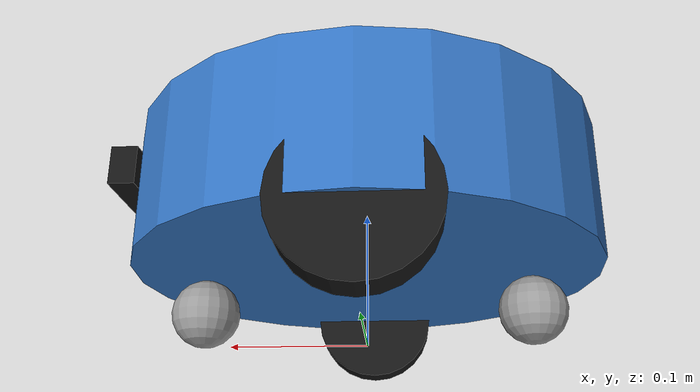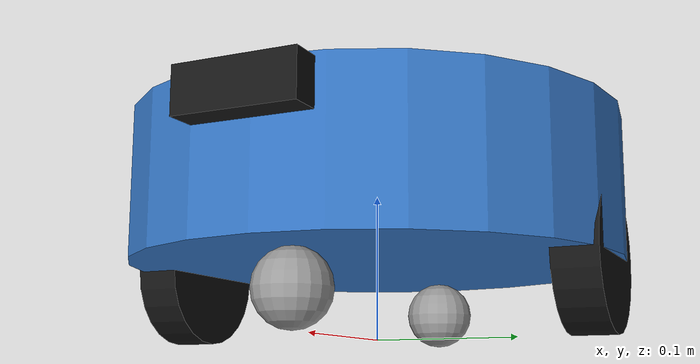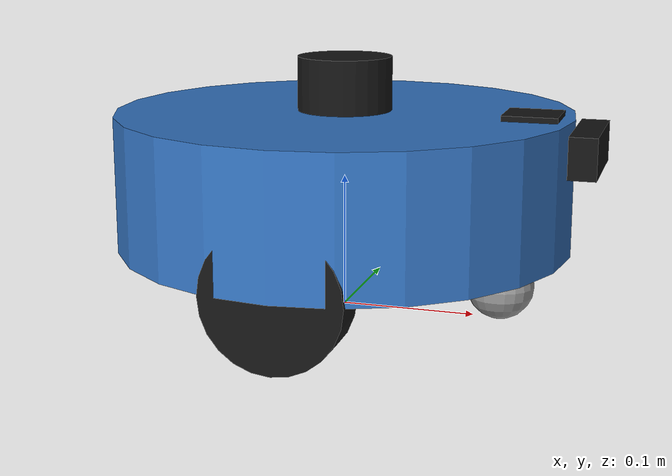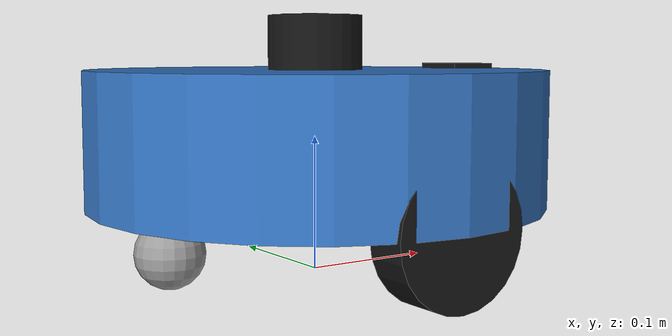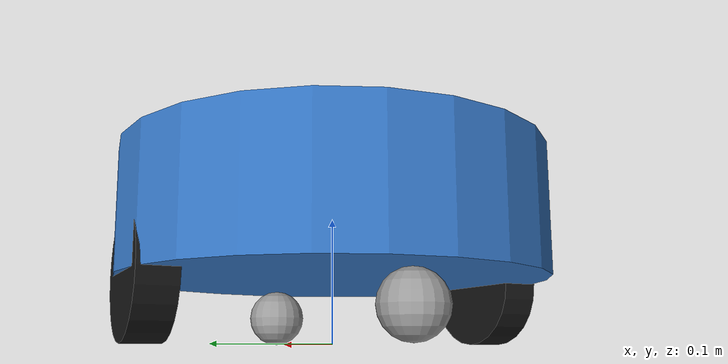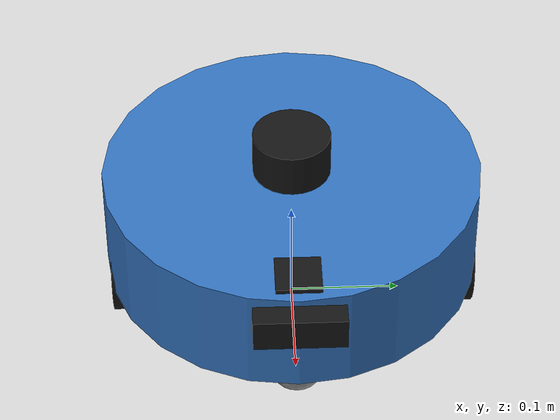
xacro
<?xml version="1.0"?>
<robot name="diffbot" xmlns:xacro="http://www.ros.org/wiki/xacro">

  <xacro:property name="PI" value="3.141592653589793"/>
  <xacro:property name="WHEEL_R" value="0.05"/>     <!-- радиус колеса r, м -->
  <xacro:property name="WHEEL_W" value="0.03"/>     <!-- ширина колеса, м -->
  <xacro:property name="WHEEL_SEP" value="0.30"/>   <!-- колея L, м -->
  <xacro:property name="BODY_R" value="0.17"/>      <!-- радиус корпуса, м -->
  <xacro:property name="BODY_H" value="0.10"/>      <!-- высота корпуса, м -->
  <xacro:property name="CASTER_R" value="0.025"/>
  <xacro:property name="M_BODY" value="2.0"/>
  <xacro:property name="M_WHEEL" value="0.2"/>

  <material name="body"><color rgba="0.20 0.45 0.75 1"/></material>
  <material name="black"><color rgba="0.08 0.08 0.08 1"/></material>
  <material name="grey"><color rgba="0.6 0.6 0.6 1"/></material>

  <!-- ===== base_footprint: проекция центра робота на пол ===== -->
  <link name="base_footprint"/>

  <joint name="base_joint" type="fixed">
    <parent link="base_footprint"/>
    <child link="base_link"/>
    <origin xyz="0 0 ${WHEEL_R}" rpy="0 0 0"/>
  </joint>

  <!-- ===== base_link: центр оси колёс ===== -->
  <link name="base_link">
    <visual>
      <origin xyz="0 0 ${BODY_H/2}"/>
      <geometry><cylinder radius="${BODY_R}" length="${BODY_H}"/></geometry>
      <material name="body"/>
    </visual>
    <!-- метка "перед" -->
    <visual>
      <origin xyz="${BODY_R-0.03} 0 ${BODY_H+0.002}"/>
      <geometry><box size="0.04 0.04 0.004"/></geometry>
      <material name="black"/>
    </visual>
    <collision>
      <origin xyz="0 0 ${BODY_H/2}"/>
      <geometry><cylinder radius="${BODY_R}" length="${BODY_H}"/></geometry>
    </collision>
    <inertial>
      <origin xyz="0 0 ${BODY_H/2}"/>
      <mass value="${M_BODY}"/>
      <inertia ixx="${M_BODY*(3*BODY_R*BODY_R+BODY_H*BODY_H)/12}" ixy="0" ixz="0"
               iyy="${M_BODY*(3*BODY_R*BODY_R+BODY_H*BODY_H)/12}" iyz="0"
               izz="${M_BODY*BODY_R*BODY_R/2}"/>
    </inertial>
  </link>

  <!-- ===== Ведущие колёса ===== -->
  <xacro:macro name="wheel" params="side y">
    <joint name="wheel_${side}_joint" type="continuous">
      <parent link="base_link"/>
      <child link="wheel_${side}_link"/>
      <origin xyz="0 ${y} 0" rpy="${-PI/2} 0 0"/>
      <axis xyz="0 0 1"/>
    </joint>
    <link name="wheel_${side}_link">
      <visual>
        <geometry><cylinder radius="${WHEEL_R}" length="${WHEEL_W}"/></geometry>
        <material name="black"/>
      </visual>
      <collision>
        <geometry><cylinder radius="${WHEEL_R}" length="${WHEEL_W}"/></geometry>
      </collision>
      <inertial>
        <mass value="${M_WHEEL}"/>
        <inertia ixx="${M_WHEEL*(3*WHEEL_R*WHEEL_R+WHEEL_W*WHEEL_W)/12}" ixy="0" ixz="0"
                 iyy="${M_WHEEL*(3*WHEEL_R*WHEEL_R+WHEEL_W*WHEEL_W)/12}" iyz="0"
                 izz="${M_WHEEL*WHEEL_R*WHEEL_R/2}"/>
      </inertial>
    </link>
    <gazebo reference="wheel_${side}_link">
      <mu1>1.0</mu1>
      <mu2>1.0</mu2>
    </gazebo>
  </xacro:macro>

  <xacro:wheel side="left" y="${WHEEL_SEP/2}"/>
  <xacro:wheel side="right" y="${-WHEEL_SEP/2}"/>

  <!-- ===== Шаровые опоры (без трения) ===== -->
  <xacro:macro name="caster" params="name x">
    <joint name="${name}_joint" type="fixed">
      <parent link="base_link"/>
      <child link="${name}_link"/>
      <origin xyz="${x} 0 ${-WHEEL_R+CASTER_R}"/>
    </joint>
    <link name="${name}_link">
      <visual>
        <geometry><sphere radius="${CASTER_R}"/></geometry>
        <material name="grey"/>
      </visual>
      <collision>
        <geometry><sphere radius="${CASTER_R}"/></geometry>
      </collision>
      <inertial>
        <mass value="0.05"/>
        <inertia ixx="1.25e-5" ixy="0" ixz="0" iyy="1.25e-5" iyz="0" izz="1.25e-5"/>
      </inertial>
    </link>
    <gazebo reference="${name}_link">
      <mu1>0.0</mu1>
      <mu2>0.0</mu2>
    </gazebo>
  </xacro:macro>

  <xacro:caster name="caster_front" x="0.12"/>
  <xacro:caster name="caster_back" x="-0.12"/>

  <!-- ===== Лидар ===== -->
  <joint name="lidar_joint" type="fixed">
    <parent link="base_link"/>
    <child link="lidar_link"/>
    <origin xyz="0 0 ${BODY_H+0.02}"/>
  </joint>
  <link name="lidar_link">
    <visual>
      <geometry><cylinder radius="0.035" length="0.04"/></geometry>
      <material name="black"/>
    </visual>
    <collision>
      <geometry><cylinder radius="0.035" length="0.04"/></geometry>
    </collision>
    <inertial>
      <mass value="0.1"/>
      <inertia ixx="4.4e-5" ixy="0" ixz="0" iyy="4.4e-5" iyz="0" izz="6.1e-5"/>
    </inertial>
  </link>

  <!-- ===== RGB-D камера ===== -->
  <joint name="camera_joint" type="fixed">
    <parent link="base_link"/>
    <child link="camera_link"/>
    <origin xyz="${BODY_R+0.01} 0 ${BODY_H-0.02}"/>
  </joint>
  <link name="camera_link">
    <visual>
      <geometry><box size="0.02 0.08 0.03"/></geometry>
      <material name="black"/>
    </visual>
    <collision>
      <geometry><box size="0.02 0.08 0.03"/></geometry>
    </collision>
    <inertial>
      <mass value="0.05"/>
      <inertia ixx="3e-5" ixy="0" ixz="0" iyy="5e-6" iyz="0" izz="3e-5"/>
    </inertial>
  </link>
  <!-- Оптическая СК камеры: z — вперёд по оси объектива, x — вправо, y — вниз -->
  <joint name="camera_optical_joint" type="fixed">
    <parent link="camera_link"/>
    <child link="camera_optical_link"/>
    <origin xyz="0 0 0" rpy="${-PI/2} 0 ${-PI/2}"/>
  </joint>
  <link name="camera_optical_link"/>

  <!-- ======================= Gazebo Harmonic ======================= -->
  <gazebo reference="base_link">
    <visual><material><diffuse>0.20 0.45 0.75 1</diffuse><ambient>0.20 0.45 0.75 1</ambient></material></visual>
  </gazebo>

  <gazebo reference="lidar_link">
    <sensor name="lidar" type="gpu_lidar">
      <always_on>true</always_on>
      <visualize>true</visualize>
      <update_rate>10</update_rate>
      <topic>scan</topic>
      <gz_frame_id>lidar_link</gz_frame_id>
      <ray>
        <scan>
          <horizontal>
            <samples>360</samples>
            <resolution>1</resolution>
            <min_angle>-3.14159</min_angle>
            <max_angle>3.14159</max_angle>
          </horizontal>
        </scan>
        <range>
          <min>0.12</min>
          <max>12.0</max>
          <resolution>0.01</resolution>
        </range>
        <noise>
          <type>gaussian</type>
          <mean>0.0</mean>
          <stddev>0.01</stddev>
        </noise>
      </ray>
    </sensor>
  </gazebo>

  <gazebo reference="camera_link">
    <sensor name="rgbd_camera" type="rgbd_camera">
      <always_on>true</always_on>
      <update_rate>15</update_rate>
      <topic>camera</topic>
      <gz_frame_id>camera_optical_link</gz_frame_id>
      <camera>
        <horizontal_fov>1.047</horizontal_fov>
        <image>
          <width>640</width>
          <height>480</height>
          <format>R8G8B8</format>
        </image>
        <clip>
          <near>0.05</near>
          <far>8.0</far>
        </clip>
      </camera>
    </sensor>
  </gazebo>

  <gazebo>
    <!-- Дифференциальный привод: принимает cmd_vel, публикует одометрию и TF odom->base_footprint -->
    <plugin filename="gz-sim-diff-drive-system" name="gz::sim::systems::DiffDrive">
      <left_joint>wheel_left_joint</left_joint>
      <right_joint>wheel_right_joint</right_joint>
      <wheel_separation>${WHEEL_SEP}</wheel_separation>
      <wheel_radius>${WHEEL_R}</wheel_radius>
      <max_linear_acceleration>1.0</max_linear_acceleration>
      <min_linear_acceleration>-1.0</min_linear_acceleration>
      <max_angular_acceleration>3.0</max_angular_acceleration>
      <min_angular_acceleration>-3.0</min_angular_acceleration>
      <max_linear_velocity>0.5</max_linear_velocity>
      <min_linear_velocity>-0.5</min_linear_velocity>
      <max_angular_velocity>2.0</max_angular_velocity>
      <min_angular_velocity>-2.0</min_angular_velocity>
      <topic>cmd_vel</topic>
      <odom_topic>odom</odom_topic>
      <tf_topic>tf</tf_topic>
      <frame_id>odom</frame_id>
      <child_frame_id>base_footprint</child_frame_id>
      <odom_publish_frequency>30</odom_publish_frequency>
    </plugin>

    <!-- «Истинное» положение робота в мире (для сравнения с одометрией в ПР №8).
         TF этого плагина в ROS не передаётся. -->
    <plugin filename="gz-sim-odometry-publisher-system" name="gz::sim::systems::OdometryPublisher">
      <odom_frame>world</odom_frame>
      <robot_base_frame>base_footprint</robot_base_frame>
      <odom_topic>ground_truth</odom_topic>
      <tf_topic>ground_truth_tf</tf_topic>
      <dimensions>2</dimensions>
      <odom_publish_frequency>30</odom_publish_frequency>
    </plugin>

    <!-- Публикация углов колёс (для robot_state_publisher и собственной одометрии в ПР №8) -->
    <plugin filename="gz-sim-joint-state-publisher-system" name="gz::sim::systems::JointStatePublisher">
      <topic>joint_states</topic>
      <joint_name>wheel_left_joint</joint_name>
      <joint_name>wheel_right_joint</joint_name>
      <update_rate>50</update_rate>
    </plugin>
  </gazebo>

</robot>
